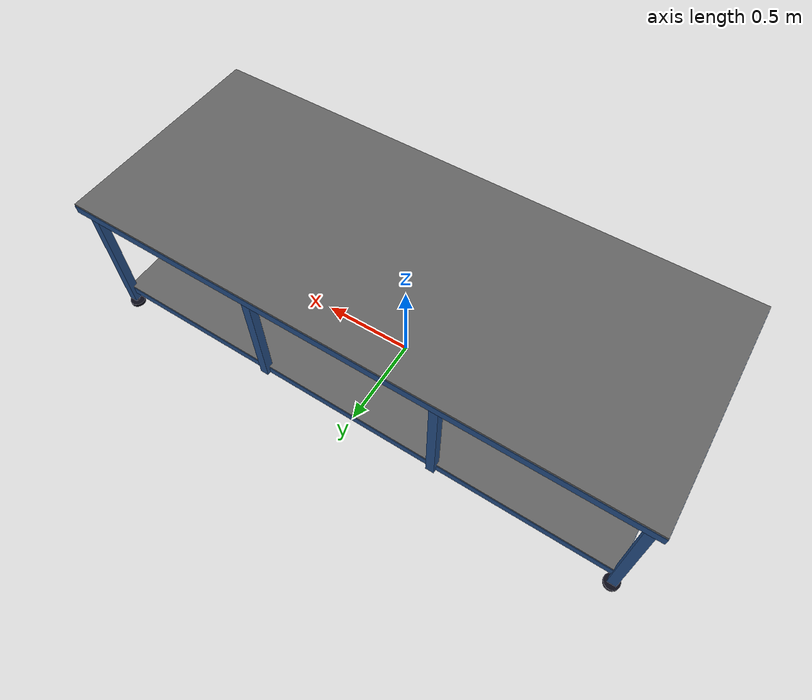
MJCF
<?xml version="1.0" encoding="utf-8"?>
<mujoco model="big table">
    <compiler angle="radian" />

    <default>
        <default class="vention">
            <geom conaffinity="0" contype="0" group="1"/>
            <default class="vention_collision">
                <geom conaffinity="1" condim="3" contype="0" group="3" margin="0.001" rgba=".4 .5 .6 1"/>
            </default>
        </default>
    </default>

    <asset>
        <material name="vention_black" rgba="0.05 0.05 0.1 1" reflectance="0" shininess=".5"  />
        <material name="vention_white" rgba="0.4 0.4 0.4 1" reflectance="0." shininess=".1"  />
        <material name="vention_blue" rgba=".14 .30 .52 1" reflectance="10" shininess=".1"  />
    </asset>

    <worldbody>
        <body name="vention table" childclass="vention">
            <!-- leg floor pads -->
            <geom type="cylinder" size="0.040 0.010" pos="-1.45 -.55 0.010" material="vention_black"/>
            <geom type="cylinder" size="0.040 0.010" pos="1.45 -.55 0.010" material="vention_black"/>
            <geom type="cylinder" size="0.040 0.010" pos="-1.45 0.55 0.010" material="vention_black"/>
            <geom type="cylinder" size="0.040 0.010" pos="1.45 0.55 0.010" material="vention_black"/>

            <!-- leg pad stems -->
            <geom type="cylinder" size="0.010 0.020" pos="-1.45 -.55 0.030" material="vention_black"/>
            <geom type="cylinder" size="0.010 0.020" pos="1.45 -.55 0.030" material="vention_black"/>
            <geom type="cylinder" size="0.010 0.020" pos="-1.45 0.55 0.030" material="vention_black"/>
            <geom type="cylinder" size="0.010 0.020" pos="1.45 0.55 0.030" material="vention_black"/>

            <!-- legs -->
            <geom type="box" size="0.023 0.023 .387" pos="-1.45 -.55 0.435" material="vention_blue"/>
            <geom type="box" size="0.023 0.023 .387" pos="1.45 -.55 0.435" material="vention_blue"/>
            <geom type="box" size="0.023 0.023 .387" pos="-1.45 0.55 0.435" material="vention_blue"/>
            <geom type="box" size="0.023 0.023 .387" pos="1.45 0.55 0.435" material="vention_blue"/>

            <!-- middle legs (two per long side) -->
            <geom type="box" size="0.023 0.023 .337" pos="-0.5 0.55 0.440" material="vention_blue"/>
            <geom type="box" size="0.023 0.023 .337" pos="0.5 0.55 0.440" material="vention_blue"/>
            <geom type="box" size="0.023 0.023 .337" pos="-0.5 -.55 0.440" material="vention_blue"/>
            <geom type="box" size="0.023 0.023 .337" pos="0.5 -.55 0.440" material="vention_blue"/>

            <!-- top board -->
            <geom type="box" size="1.500 0.600 0.023" pos="0 0 0.801" material="vention_white"/>
            <geom type="box" size="1.502 0.602 0.023" pos="0 0 0.790" material="vention_blue"/>

            <!-- bottom board -->
            <geom type="box" size="1.450 0.550 0.005" pos="0 0 0.150" material="vention_white"/>
            <geom type="box" size="1.452 0.552 0.023" pos="0 0 0.124" material="vention_blue"/>

            <!-- collision -->
            <geom type="box" size="1.502 0.602 0.411" pos="0 0 0.413" class="vention_collision"/>
        </body>
    </worldbody>

</mujoco>
